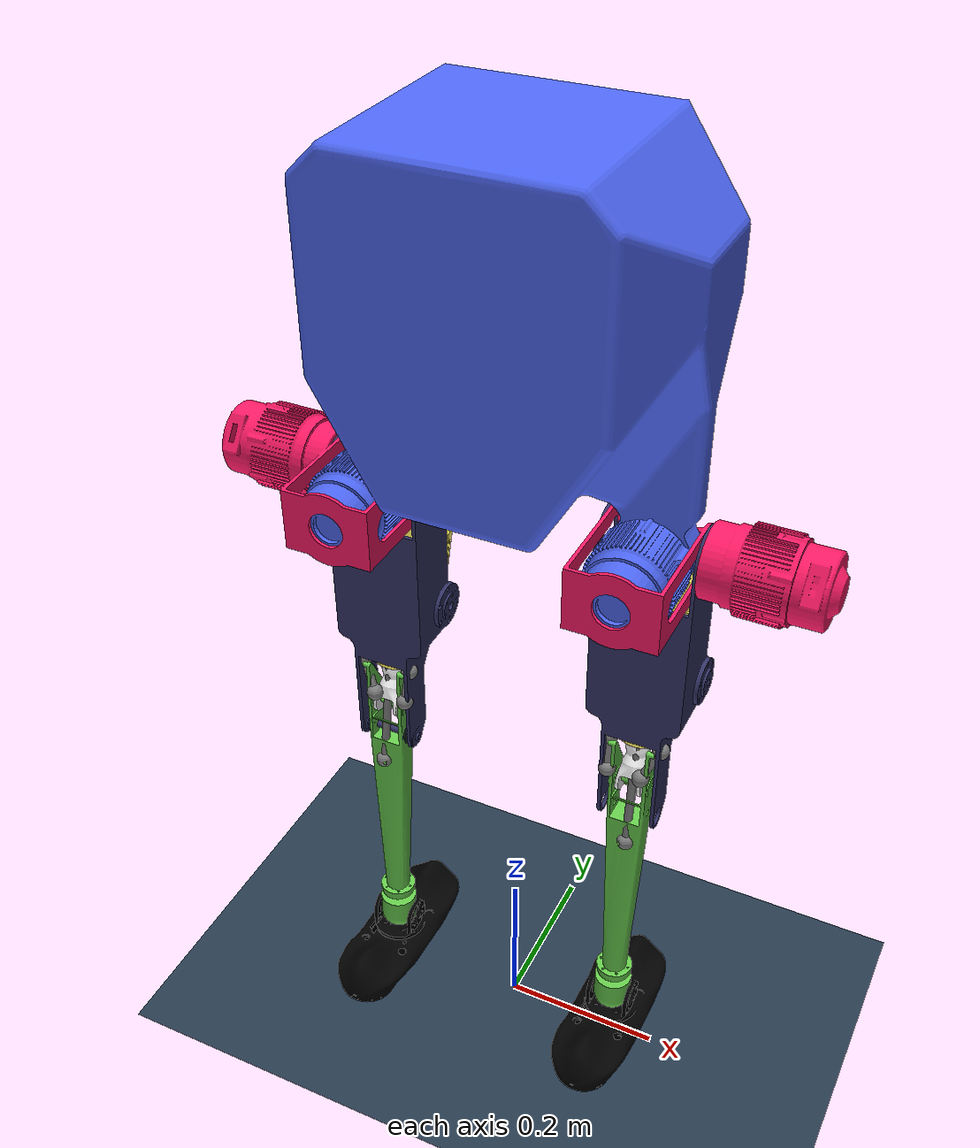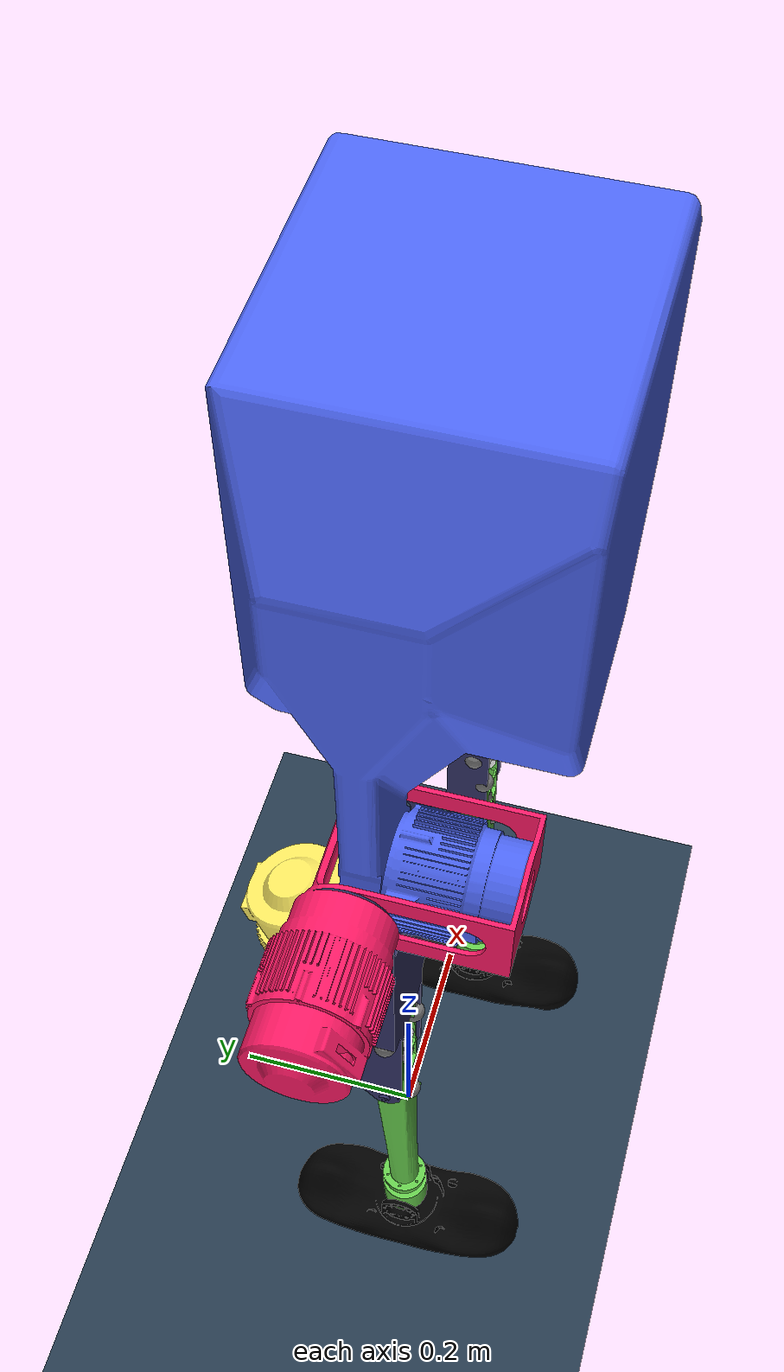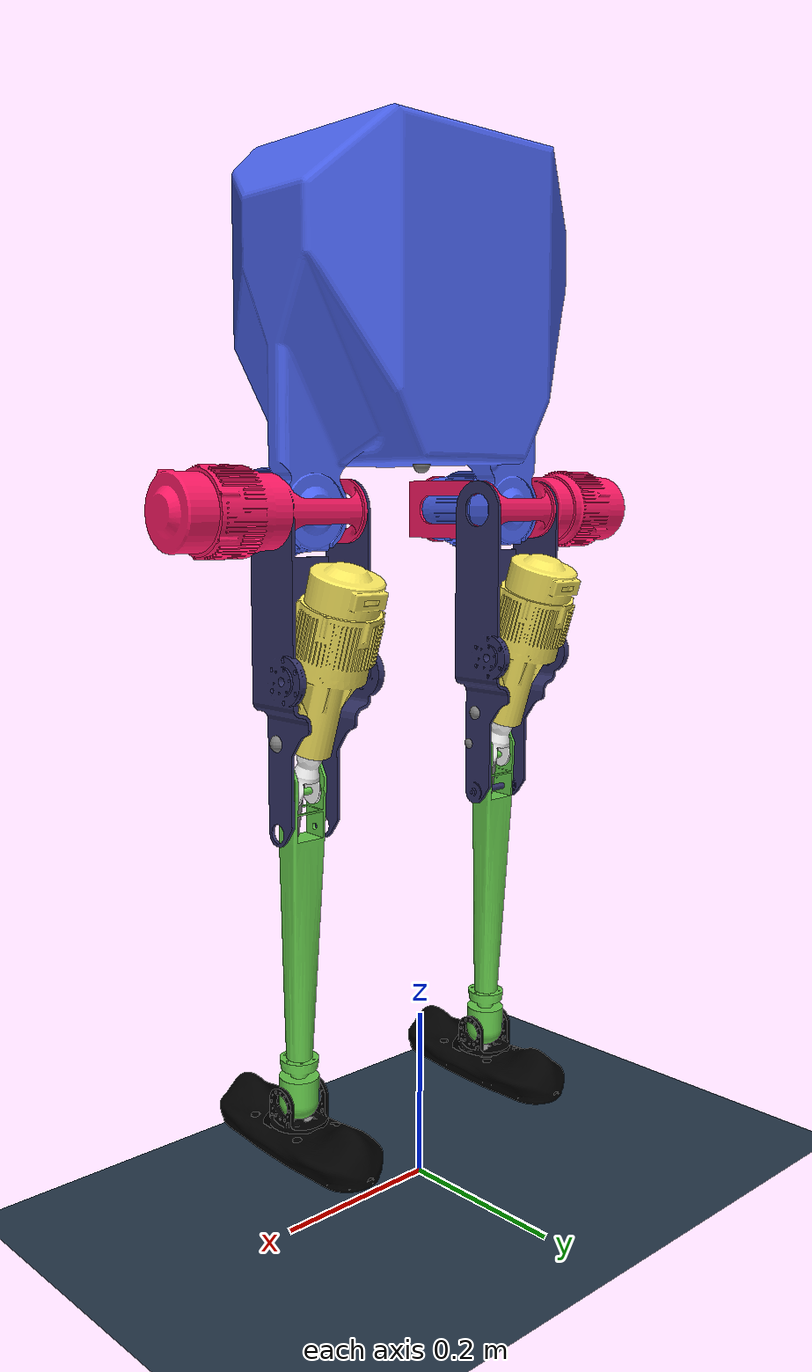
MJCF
<mujoco model="springleg">
  <compiler angle="radian" autolimits="true"/>
  <default/>
  <asset>
    <mesh name="torso" file="torso.STL"/>
    <mesh name="rhip_linkage" file="rhip_linkage.STL"/>
    <mesh name="rfem_linkage" file="rfem_linkage.STL"/>
    <mesh name="rtib_linkage" file="rtib_linkage.STL"/>
    <mesh name="rfoot_linkage" file="rfoot_linkage.STL"/>
    <mesh name="rmotor_linkage" file="rmotor_linkage.STL"/>
    <mesh name="rpush_linkage" file="rpush_linkage.STL"/>
    <mesh name="lhip_linkage" file="lhip_linkage.STL"/>
    <mesh name="lfem_linkage" file="lfem_linkage.STL"/>
    <mesh name="ltib_linkage" file="ltib_linkage.STL"/>
    <mesh name="lfoot_linkage" file="lfoot_linkage.STL"/>
    <mesh name="lmotor_linkage" file="lmotor_linkage.STL"/>
    <mesh name="lpush_linkage" file="lpush_linkage.STL"/>
     <texture name="texplane" type="2d" builtin="checker" rgb1=".2 .3 .4" rgb2=".1 0.15 0.2" width="512" height="512" mark="cross" markrgb=".8 .8 .8"/>

        <texture name="texgeom" type="cube" builtin="flat" mark="cross" width="127" height="1278"
            rgb1="0.8 0.6 0.4" rgb2="0.8 0.6 0.4" markrgb="1 1 1" random="0.01"/>

        <material name="matplane" reflectance="0.3" texture="texplane" texrepeat="1 1" texuniform="true"/>

        <material name="matgeom" texture="texgeom" texuniform="true" rgba="0.8 0.6 .4 1"/>
  </asset>

  <option timestep="0.001" iterations="50" tolerance="1e-10" solver="Newton" jacobian="dense" cone="pyramidal"/>

     <visual>
      <map force="0.1" zfar="30"/>
      <rgba haze="0.15 0.25 0.35 1"/>
      <quality shadowsize="2048"/>
      <global offwidth="800" offheight="800"/>
  </visual>

  <worldbody>

    <geom name="floor" pos="0 0 0" size="0 0 .25" type="plane" material="matplane" condim="3"/>

    <light directional="false" diffuse=".8 .8 .8" specular="0.3 0.3 0.3" pos="0 0 30" dir="0 0 -1" castshadow="false"/>

    <body name= "torso" pos="0 0 0.85">
      <freejoint name="floatbase"/>
      <inertial pos="0 0 0.15" quat="1 0 0 0"
      mass="50.7616034596736" diaginertia="0.290501424863317	0.259453115704016	0.110844296891057"/>
      <geom type="mesh" rgba="0.3 0.4 0.95 1" mesh="torso"/>
      <site name = "site_imu" size = "0.01" pos = "0.0000000 0.00000000 0.000000"/>

      <body name="rhip_linkage" pos="0.155 -0.1218 -0.052" quat="0.707107 0 0 0.707107" gravcomp="0">
        <inertial pos="0.0937072 -0.0762481 0.000314276" quat="-0.012333 0.702284 -0.0139005 0.711655" mass="0.750428" diaginertia="0.001725 0.00168956 0.000981747"/>
        <joint name="rhip_roll" pos="0 0 0" axis="1 0 0" limited="true" range="-1.14 1.14" damping="1" armature = "0.1"/>
        <geom type="mesh" rgba="1 0.1 0.4 1" mesh="rhip_linkage"/>
        <body name="rfem_linkage" pos="0.1126 -0.046 0" gravcomp="0">
          <inertial pos="-0.00907837 0.046 -0.150443" quat="0.999882 0 0.015352 0" mass="0.752951" diaginertia="0.00677772 0.00585966 0.00159087"/>
          <joint name="rfem_pitch" pos="0 0 0" axis="0 1 0" limited="true" range="-2.14 2.14" damping="1" armature = "0.1"/>
          <geom type="mesh" rgba="0.2 0.2 0.4 1" mesh="rfem_linkage"/>
          <site name = "site_rspring_point1" size = "0.01" pos = "-0.0200000 0.07500000 -0.250000"/>
        <site name = "site_rspring_point2" size = "0.01" pos = "-0.0200000 0.01500000 -0.250000"/>
        <site name = "site_rspring_point5" size = "0.01" pos = "-0.0100000 0.04500000 -0.24000"/>
          <body name="rtib_linkage" pos="-0.02 0.0525 -0.35" gravcomp="0">
            <inertial pos="-0.00432828 -0.0065013 -0.130768" quat="0.999896 2.73075e-07 0.0144425 1.89058e-05" mass="0.79591" diaginertia="0.00537109 0.00532164 0.000176269"/>
            <joint name="rtib_pitch" pos="0 0 0" axis="0 -1 0" limited="true" range="-2 -0.1" damping="1" armature = "0.1"/>
            <geom type="mesh" rgba="0.4 0.8 0.3 1" mesh="rtib_linkage"/>
            <site name = "site_rspring_point3" size = "0.01" pos = "-0.0100000 0.0200000 0.060000"/>
          <site name = "site_rspring_point4" size = "0.01" pos = "-0.0100000 -0.0200000 0.060000"/>
          <site name = "site_rspring_point6" size = "0.01" pos = "-0.0150000 -0.0100000 -0.040000"/>
          <site name = "site_rforcesensor" size = "0.01" pos = "-0.0000000 0.00000000 -0.35000000"/>
            <body name="rfoot_linkage" pos="-0.010295 -0.0065 -0.319834" quat="0.999871 0 0.016088 0" gravcomp="0">
              <inertial pos="-0.000874353 -8.1981e-06 -0.043559" quat="-3.69307e-05 0.707076 3.36076e-05 0.707138" mass="0.289601" diaginertia="0.00131603 0.00117417 0.0001726"/>
              <joint name="rfoot_pitch" pos="0 0 0" axis="0 1 0" limited="true" range="-0.5 0.5" damping="1" armature = "0.1"/>
              <geom type="mesh" rgba="0 0 0 1" mesh="rfoot_linkage"/>
            </body>
          </body>
          <body name="rmotor_linkage" pos="0.025 0.046 -0.175" quat="0.98746 0 0.157868 0" gravcomp="0">
            <inertial pos="0.000651157 6.04783e-08 0.0334679" quat="0.505867 0.505859 -0.494067 0.494069" mass="0.612606" diaginertia="0.000791379 0.000698857 0.000659067"/>
            <joint name="rmotor_pitch" pos="0 0 0" axis="0 1 0"/>
            <geom type="mesh" rgba="1 0.929412 0.384314 1" mesh="rmotor_linkage"/>
            <body name="rpush_linkage" pos="0 0 0" gravcomp="0">
              <inertial pos="-0.000471736 -1.47422e-06 -0.085898" quat="0.999994 1.44066e-05 0.00330192 -0.000615198" mass="0.0711155" diaginertia="6.04282e-05 5.88654e-05 1.08719e-05"/>
              <joint name="rpush_linear" pos="0 0 0" axis="0 0 -1" type="slide"/>
              <geom type="mesh" rgba="1 1 1 1" mesh="rpush_linkage"/>
            </body>
          </body>
        </body>
      </body>
      <body name="lhip_linkage" pos="-0.155 -0.1272 -0.052" quat="0.707107 0 0 0.707107" gravcomp="0">
        <inertial pos="0.0991069 0.0762498 0.000315435" quat="0.0123232 0.702284 0.0138908 0.711655" mass="0.750413" diaginertia="0.00172502 0.00168957 0.000981751"/>
        <joint name="lhip_roll" pos="0 0 0" axis="1 0 0" limited="true" range="-1.14 1.14" damping="1" armature = "0.1"/>
        <geom type="mesh" rgba="1 0.1 0.4 1" mesh="lhip_linkage"/>
        <body name="lfem_linkage" pos="0.118 0.046 0" gravcomp="0">
          <inertial pos="-0.00923086 -0.0459646 -0.153212" quat="0.999882 0 0.0153517 0" mass="0.763546" diaginertia="0.00677979 0.00586023 0.00159295"/>
          <joint name="lfem_pitch" pos="0 0 0" axis="0 -1 0" limited="true" range="-2.14 2.14" damping="1" armature = "0.1"/>
          <geom type="mesh" rgba="0.2 0.2 0.4 1" mesh="lfem_linkage"/>
          <site name = "site_lspring_point1" size = "0.01" pos = "-0.0200000 -0.07500000 -0.250000"/>
          <site name = "site_lspring_point2" size = "0.01" pos = "-0.0200000 -0.01500000 -0.250000"/>
          <site name = "site_lspring_point5" size = "0.01" pos = "-0.0100000 -0.04500000 -0.24000"/>

           <body name="ltib_linkage" pos="-0.02 -0.0525 -0.35" gravcomp="0">
            <inertial pos="-0.00456027 0.00649947 -0.138154" quat="0.999896 0 0.0144436 0" mass="0.836177" diaginertia="0.00538006 0.00533061 0.000181618"/>
            <joint name="ltib_pitch" pos="0 0 0" axis="0 1 0" limited="true" range="0.1 2" damping="1" armature = "0.1"/>
            <geom type="mesh" rgba="0.4 0.8 0.3 1" mesh="ltib_linkage"/>
            <site name = "site_lspring_point3" size = "0.01" pos = "-0.0100000 -0.0200000 0.060000"/>
            <site name = "site_lspring_point4" size = "0.01" pos = "-0.0100000 0.0200000 0.060000"/>
            <site name = "site_lspring_point6" size = "0.01" pos = "-0.0150000 0.0100000 -0.040000"/>
            <site name = "site_lforcesensor" size = "0.01" pos = "-0.0000000 0.00000000 -0.35000000"/>

            <body name="lfoot_linkage" pos="-0.010295 0.0065 -0.319834" quat="0.999871 0 0.016088 0" gravcomp="0">
              <inertial pos="-0.000874353 -8.1981e-06 -0.043559" quat="-3.69307e-05 0.707076 3.36076e-05 0.707138" mass="0.289601" diaginertia="0.00131603 0.00117417 0.0001726"/>
              <joint name="lfoot_pitch" pos="0 0 0" axis="0 1 0" limited="true" range="-0.5 0.5" damping="1" armature = "0.1"/>
              <geom type="mesh" rgba="0 0 0 1" mesh="lfoot_linkage"/>
            </body>
          </body>

          <body name="lmotor_linkage" pos="0.025 -0.046 -0.175" quat="0.98746 0 0.157868 0" gravcomp="0">
            <inertial pos="0.000651016 8.14919e-08 0.0334679" quat="0.505871 0.505863 -0.494063 0.494063" mass="0.612605" diaginertia="0.000791378 0.000698857 0.000659067"/>
            <joint name="lmotor_pitch" pos="0 0 0" axis="0 -1 0"/>
            <geom type="mesh" rgba="1 0.929412 0.384314 1" mesh="lmotor_linkage"/>
            <body name="lpush_linkage" pos="0 0 0" gravcomp="0">
              <inertial pos="-0.00046504 2.01141e-06 -0.0858979" quat="0.999992 5.94428e-07 0.00319272 0.0025794" mass="0.0711149" diaginertia="6.04283e-05 5.88661e-05 1.08726e-05"/>
              <joint name="lpush_linear" pos="0 0 0" axis="0 0 -1" type="slide"/>
              <geom type="mesh" rgba="1 1 1 1" mesh="lpush_linkage"/>
            </body>
          </body>

      </body>
    </body>
  </body>
  </worldbody>

  <equality>

		<connect anchor="-0.002 0 -0.14" body1="lpush_linkage" body2="ltib_linkage" name="equality_constraint1"/>
    <connect anchor="-0.002 0 -0.14" body1="rpush_linkage" body2="rtib_linkage" name="equality_constraint2"/>

  </equality>

  	<sensor>
		<force name = "rforcesensor" site = "site_rforcesensor" cutoff = "2000.0"/>
		<torque name = "rtorquesensor" site = "site_rforcesensor" cutoff = "2000.0"/>
		<force name = "lforcesensor" site = "site_lforcesensor" cutoff = "2000.0"/>
		<torque name = "ltorquesensor" site = "site_lforcesensor" cutoff = "2000.0"/>

		<framequat     name='root-orient' objtype='site' objname='site_imu'/>
		<gyro          name="root_gyro"        site="site_imu"  noise='5e-4' cutoff='34.9'/>
		<accelerometer name = "root_accel"     site = "site_imu" noise='1e-2' cutoff='157'/>
		<velocimeter   name = "root_veloc"     site = "site_imu" />

		<framepos     name='imurealpos' objtype='site' objname='site_imu'/>
		<framelinvel     name='imurealveloc' objtype='site' objname='site_imu'/>
	</sensor>

   <contact>
		<exclude body1 = "torso" body2 = "rhip_linkage"/>
		<exclude body1 = "torso" body2 = "lhip_linkage"/>
		<exclude body1 = "rhip_linkage" body2 = "rfem_linkage"/>
		<exclude body1 = "rfem_linkage" body2 = "rtib_linkage"/>
    <exclude body1 = "torso" body2 = "rfem_linkage"/>
		<exclude body1 = "torso" body2 = "lfem_linkage"/>

		<exclude body1 = "lhip_linkage" body2 = "lfem_linkage"/>
		<exclude body1 = "lfem_linkage" body2 = "ltib_linkage"/>

    <exclude body1 = "ltib_linkage" body2 = "lfoot_linkage"/>
		    <exclude body1 = "rtib_linkage" body2 = "rfoot_linkage"/>
            <exclude body1 = "lfem_linkage" body2 = "rfem_linkage"/>
		    <exclude body1 = "lfem_linkage" body2 = "rtib_linkage"/>
        <exclude body1 = "rfem_linkage" body2 = "ltib_linkage"/>
        <exclude body1 = "rfem_linkage" body2 = "lfoot_linkage"/>
        <exclude body1 = "lfem_linkage" body2 = "rfoot_linkage"/>

        <exclude body1 = "lfem_linkage" body2 = "lmotor_linkage"/>
        <exclude body1 = "lfem_linkage" body2 = "lpush_linkage"/>
         <exclude body1 = "ltib_linkage" body2 = "lpush_linkage"/>
         <exclude body1 = "ltib_linkage" body2 = "lmotor_linkage"/>
         <exclude body1 = "lpush_linkage" body2 = "lmotor_linkage"/>
         <exclude body1 = "rfem_linkage" body2 = "rmotor_linkage"/>
        <exclude body1 = "rfem_linkage" body2 = "rpush_linkage"/>
         <exclude body1 = "rtib_linkage" body2 = "rpush_linkage"/>
         <exclude body1 = "rtib_linkage" body2 = "rmotor_linkage"/>
         <exclude body1 = "rpush_linkage" body2 = "rmotor_linkage"/>
         <exclude body1 = "ltib_linkage" body2 = "rtib_linkage"/>

         <exclude body1 = "rfoot_linkage" body2 = "rtib_linkage"/>
         <exclude body1 = "rfoot_linkage" body2 = "ltib_linkage"/>
         <exclude body1 = "rfoot_linkage" body2 = "lfoot_linkage"/>

         <exclude body1 = "lfoot_linkage" body2 = "rtib_linkage"/>
         <exclude body1 = "lfoot_linkage" body2 = "rtib_linkage"/>
         <exclude body1 = "lfoot_linkage" body2 = "lfoot_linkage"/>

	</contact>

  <tendon>
    <spatial springlength="0.06" width="0.005" stiffness="20000" damping="100">

      <site site="site_lspring_point1"/>
      <site site="site_lspring_point3"/>
    </spatial>

    <spatial springlength="0.06" width="0.005" stiffness="20000" damping="100">

      <site site="site_lspring_point2"/>
      <site site="site_lspring_point4"/>
    </spatial>

    <spatial springlength="0.06" width="0.005" stiffness="20000" damping="100">

      <site site="site_rspring_point1"/>
      <site site="site_rspring_point3"/>
    </spatial>

    <spatial springlength="0.06" width="0.005" stiffness="20000" damping="100">

      <site site="site_rspring_point2"/>
      <site site="site_rspring_point4"/>
    </spatial>

    <spatial springlength="0.15" width="0.005" stiffness="20000" damping="100">

      <site site="site_rspring_point5"/>
      <site site="site_rspring_point6"/>
    </spatial>

    <spatial springlength="0.15" width="0.005" stiffness="20000" damping="100">

      <site site="site_lspring_point5"/>
      <site site="site_lspring_point6"/>
    </spatial>

  </tendon>

  <actuator>
  </actuator>

</mujoco>
